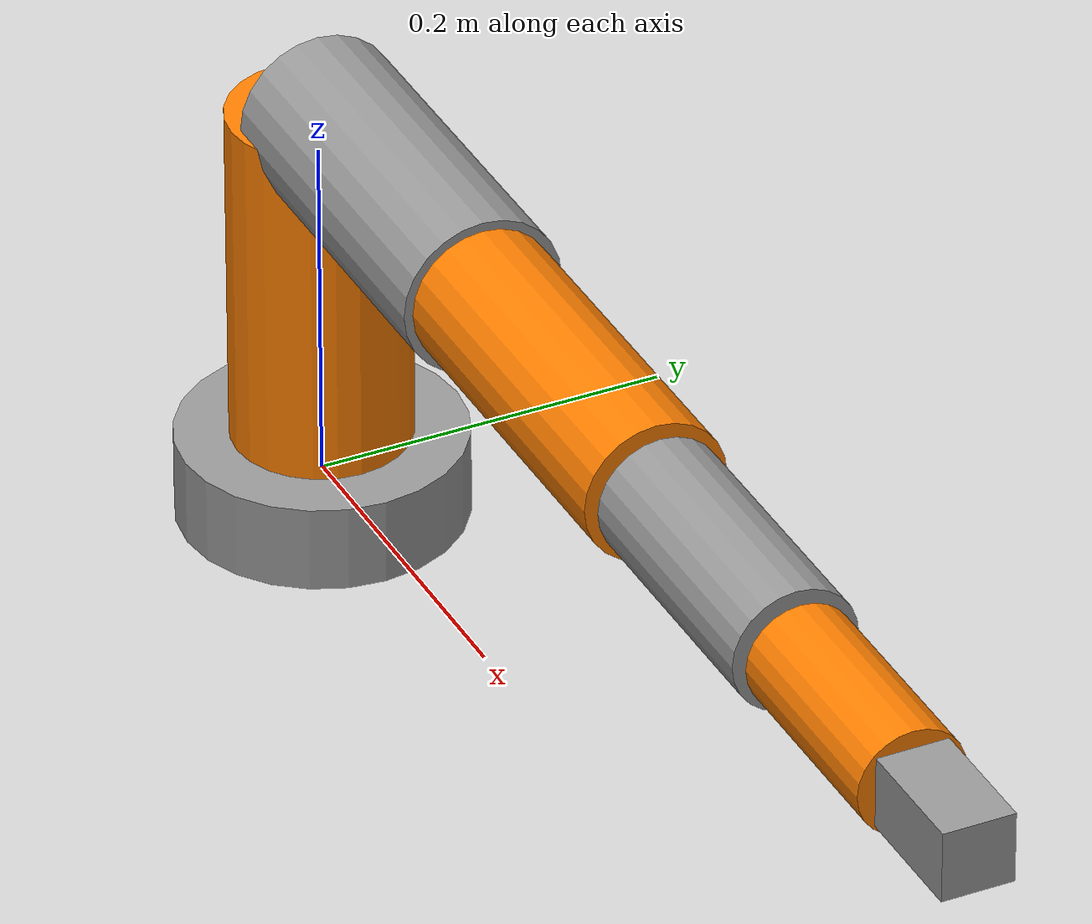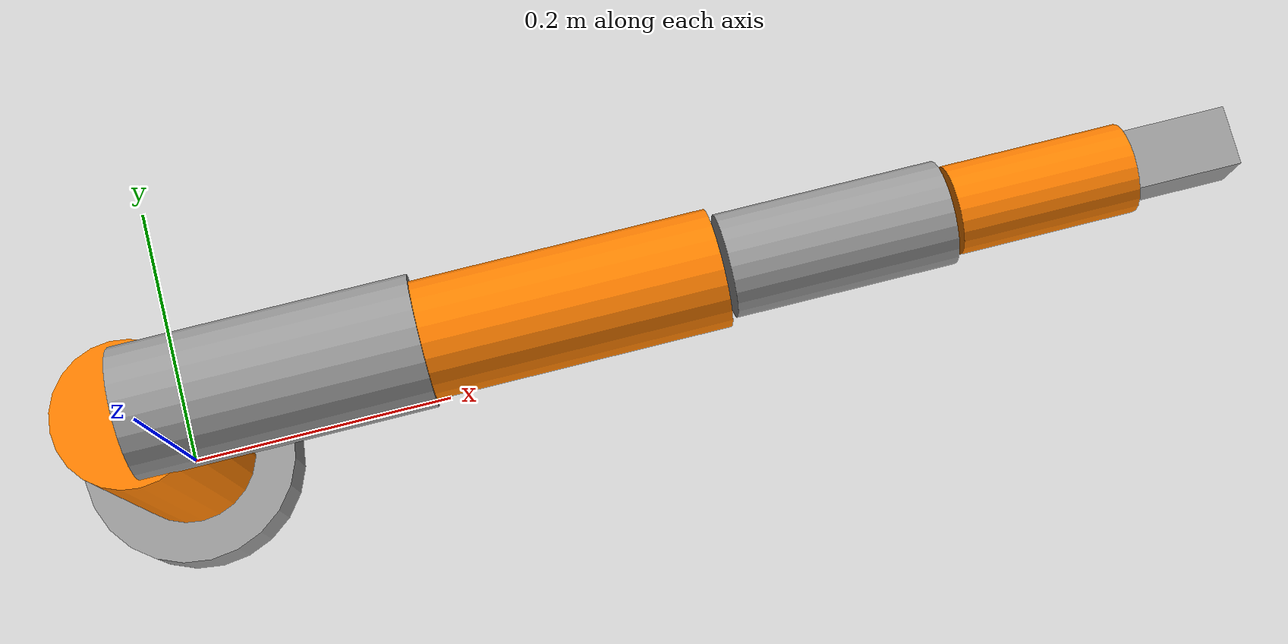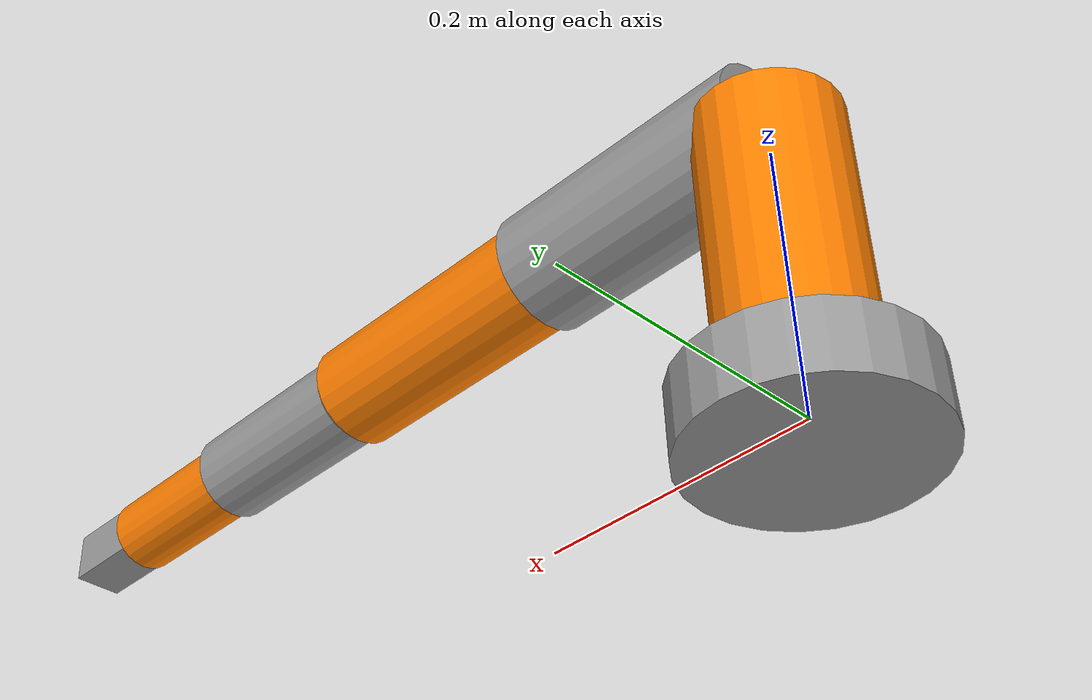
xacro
<?xml version="1.0"?>
<robot name="my_robot_arm" xmlns:xacro="http://www.ros.org/wiki/xacro">
  <material name="grey"><color rgba="0.6 0.6 0.6 1"/></material>
  <material name="orange"><color rgba="1.0 0.5 0.0 1"/></material>

  <link name="base_link">
    <visual>
      <geometry><cylinder radius="0.08" length="0.05"/></geometry>
      <material name="grey"/>
    </visual>
    <collision>
      <geometry><cylinder radius="0.08" length="0.05"/></geometry>
    </collision>
  </link>

  <link name="link1">
    <visual>
      <origin xyz="0 0 0.1" rpy="0 0 0"/>
      <geometry><cylinder radius="0.05" length="0.2"/></geometry>
      <material name="orange"/>
    </visual>
    <collision>
      <origin xyz="0 0 0.1" rpy="0 0 0"/>
      <geometry><cylinder radius="0.05" length="0.2"/></geometry>
    </collision>
  </link>
  <joint name="joint1" type="revolute">
    <parent link="base_link"/>
    <child link="link1"/>
    <origin xyz="0 0 0.025" rpy="0 0 0"/>
    <axis xyz="0 0 1"/>
    <limit lower="-3.14" upper="3.14" effort="10" velocity="1"/>
  </joint>

  <link name="link2">
    <visual>
      <origin xyz="0 0 0.1" rpy="0 0 0"/>
      <geometry><cylinder radius="0.045" length="0.2"/></geometry>
      <material name="grey"/>
    </visual>
    <collision>
      <origin xyz="0 0 0.1" rpy="0 0 0"/>
      <geometry><cylinder radius="0.045" length="0.2"/></geometry>
    </collision>
  </link>
  <joint name="joint2" type="revolute">
    <parent link="link1"/>
    <child link="link2"/>
    <origin xyz="0 0 0.2" rpy="0 1.57 0"/>
    <axis xyz="0 1 0"/>
    <limit lower="-1.57" upper="1.57" effort="10" velocity="1"/>
  </joint>

  <link name="link3">
    <visual>
      <origin xyz="0 0 0.1" rpy="0 0 0"/>
      <geometry><cylinder radius="0.04" length="0.2"/></geometry>
      <material name="orange"/>
    </visual>
    <collision>
      <origin xyz="0 0 0.1" rpy="0 0 0"/>
      <geometry><cylinder radius="0.04" length="0.2"/></geometry>
    </collision>
  </link>
  <joint name="joint3" type="revolute">
    <parent link="link2"/>
    <child link="link3"/>
    <origin xyz="0 0 0.2" rpy="0 0 0"/>
    <axis xyz="0 1 0"/>
    <limit lower="-2.0" upper="2.0" effort="10" velocity="1"/>
  </joint>

  <link name="link4">
    <visual>
      <origin xyz="0 0 0.08" rpy="0 0 0"/>
      <geometry><cylinder radius="0.035" length="0.15"/></geometry>
      <material name="grey"/>
    </visual>
    <collision>
      <origin xyz="0 0 0.08" rpy="0 0 0"/>
      <geometry><cylinder radius="0.035" length="0.15"/></geometry>
    </collision>
  </link>
  <joint name="joint4" type="revolute">
    <parent link="link3"/>
    <child link="link4"/>
    <origin xyz="0 0 0.2" rpy="0 0 0"/>
    <axis xyz="0 0 1"/>
    <limit lower="-3.14" upper="3.14" effort="5" velocity="1"/>
  </joint>

  <link name="link5">
    <visual>
      <origin xyz="0 0 0.07" rpy="0 0 0"/>
      <geometry><cylinder radius="0.03" length="0.12"/></geometry>
      <material name="orange"/>
    </visual>
    <collision>
      <origin xyz="0 0 0.07" rpy="0 0 0"/>
      <geometry><cylinder radius="0.03" length="0.12"/></geometry>
    </collision>
  </link>
  <joint name="joint5" type="revolute">
    <parent link="link4"/>
    <child link="link5"/>
    <origin xyz="0 0 0.15" rpy="0 0 0"/>
    <axis xyz="0 1 0"/>
    <limit lower="-1.57" upper="1.57" effort="5" velocity="1"/>
  </joint>

  <link name="end_effector">
    <visual>
      <origin xyz="0 0 0.04" rpy="0 0 0"/>
      <geometry><box size="0.04 0.04 0.08"/></geometry>
      <material name="grey"/>
    </visual>
    <collision>
      <origin xyz="0 0 0.04" rpy="0 0 0"/>
      <geometry><box size="0.04 0.04 0.08"/></geometry>
    </collision>
  </link>
  <joint name="joint6" type="revolute">
    <parent link="link5"/>
    <child link="end_effector"/>
    <origin xyz="0 0 0.12" rpy="0 0 0"/>
    <axis xyz="0 0 1"/>
    <limit lower="-3.14" upper="3.14" effort="5" velocity="1"/>
  </joint>

  <ros2_control name="my_robot_arm_system" type="system">
    <hardware>
      <plugin>fake_components/GenericSystem</plugin>
    </hardware>
    <joint name="joint1">
      <command_interface name="position"/>
      <state_interface name="position"/>
      <state_interface name="velocity"/>
    </joint>
    <joint name="joint2">
      <command_interface name="position"/>
      <state_interface name="position"/>
      <state_interface name="velocity"/>
    </joint>
    <joint name="joint3">
      <command_interface name="position"/>
      <state_interface name="position"/>
      <state_interface name="velocity"/>
    </joint>
    <joint name="joint4">
      <command_interface name="position"/>
      <state_interface name="position"/>
      <state_interface name="velocity"/>
    </joint>
    <joint name="joint5">
      <command_interface name="position"/>
      <state_interface name="position"/>
      <state_interface name="velocity"/>
    </joint>
    <joint name="joint6">
      <command_interface name="position"/>
      <state_interface name="position"/>
      <state_interface name="velocity"/>
    </joint>
  </ros2_control>

</robot>
